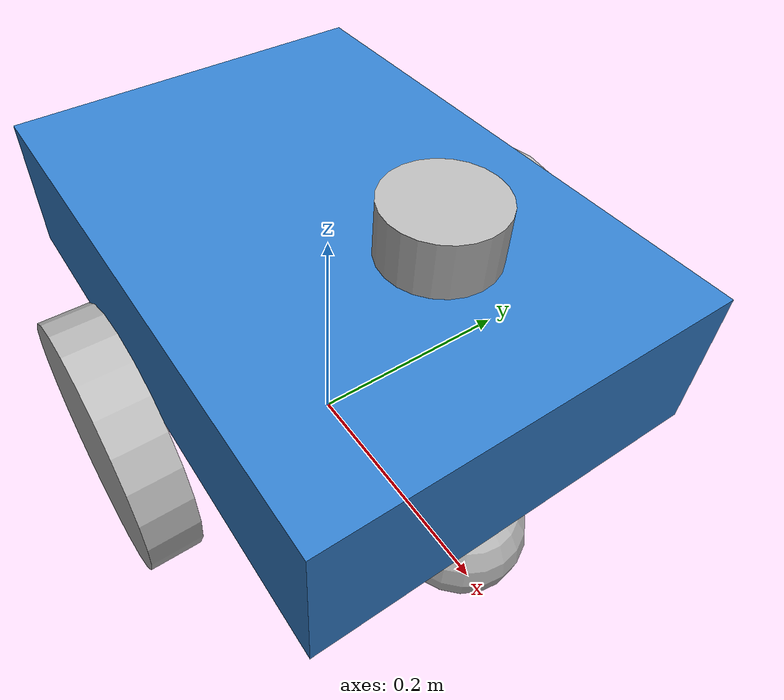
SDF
<?xml version="1.0" ?>
<sdf version="1.8">
  <model name="bomi_robot">

    <link name="base_link">
      <pose>0 0 0.18 0 0 0</pose>

      <!--
        관성은 0.45 x 0.32 x 0.12 m 직육면체(5.0 kg)의 이론값이다.
        배터리와 구동부가 차체 아래쪽에 실린다고 보고 무게중심을
        링크 원점보다 0.04 m 낮춰 주행 중 전복 여유를 확보한다.
      -->
      <inertial>
        <pose>0 0 -0.04 0 0 0</pose>
        <mass>5.0</mass>
        <inertia>
          <ixx>0.048667</ixx>
          <iyy>0.090375</iyy>
          <izz>0.127042</izz>
        </inertia>
      </inertial>

      <collision name="base_collision">
        <geometry>
          <box>
            <size>0.45 0.32 0.12</size>
          </box>
        </geometry>
      </collision>

      <visual name="base_visual">
        <geometry>
          <box>
            <size>0.45 0.32 0.12</size>
          </box>
        </geometry>

        <material>
          <ambient>0.2 0.5 0.8 1</ambient>
          <diffuse>0.2 0.5 0.8 1</diffuse>
        </material>
      </visual>
    </link>

    <link name="left_wheel">
      <pose>0 0.19 0.10 1.5708 0 0</pose>

      <!-- 반지름 0.10 m, 두께 0.04 m 원통(0.5 kg)의 이론 관성. 로컬 z가 회전축이다. -->
      <inertial>
        <mass>0.5</mass>
        <inertia>
          <ixx>0.001317</ixx>
          <iyy>0.001317</iyy>
          <izz>0.002500</izz>
        </inertia>
      </inertial>

      <collision name="collision">
        <geometry>
          <cylinder>
            <radius>0.10</radius>
            <length>0.04</length>
          </cylinder>
        </geometry>

        <!-- 구동륜은 미끄러지지 않도록 마찰을 명시한다. -->
        <surface>
          <friction>
            <ode>
              <mu>1.0</mu>
              <mu2>1.0</mu2>
            </ode>
          </friction>
        </surface>
      </collision>

      <visual name="visual">
        <geometry>
          <cylinder>
            <radius>0.10</radius>
            <length>0.04</length>
          </cylinder>
        </geometry>
      </visual>
    </link>

    <link name="right_wheel">
      <pose>0 -0.19 0.10 1.5708 0 0</pose>

      <!-- 반지름 0.10 m, 두께 0.04 m 원통(0.5 kg)의 이론 관성. 로컬 z가 회전축이다. -->
      <inertial>
        <mass>0.5</mass>
        <inertia>
          <ixx>0.001317</ixx>
          <iyy>0.001317</iyy>
          <izz>0.002500</izz>
        </inertia>
      </inertial>

      <collision name="collision">
        <geometry>
          <cylinder>
            <radius>0.10</radius>
            <length>0.04</length>
          </cylinder>
        </geometry>

        <!-- 구동륜은 미끄러지지 않도록 마찰을 명시한다. -->
        <surface>
          <friction>
            <ode>
              <mu>1.0</mu>
              <mu2>1.0</mu2>
            </ode>
          </friction>
        </surface>
      </collision>

      <visual name="visual">
        <geometry>
          <cylinder>
            <radius>0.10</radius>
            <length>0.04</length>
          </cylinder>
        </geometry>
      </visual>
    </link>

    <!--
      캐스터는 앞뒤 두 곳에 둔다. 뒤쪽에만 있으면 지지 다각형의 앞 경계가
      구동륜 축과 같아져 전진 가감속만으로도 로봇이 앞으로 넘어지고,
      기울어진 LiDAR가 바닥을 가짜 장애물로 인식한다.
      두 캐스터 모두 접지점이 z = 0으로 구동륜과 같은 높이다.
    -->
    <link name="rear_caster">
      <pose>-0.18 0 0.05 0 0 0</pose>

      <!-- 반지름 0.05 m 구(0.2 kg)의 이론 관성. -->
      <inertial>
        <mass>0.2</mass>
        <inertia>
          <ixx>0.0002</ixx>
          <iyy>0.0002</iyy>
          <izz>0.0002</izz>
        </inertia>
      </inertial>

      <collision name="collision">
        <geometry>
          <sphere>
            <radius>0.05</radius>
          </sphere>
        </geometry>

        <!-- 고정 캐스터가 바닥을 잡아 주행과 제자리 회전을 방해하지 않도록 마찰을 없앤다. -->
        <surface>
          <friction>
            <ode>
              <mu>0.0</mu>
              <mu2>0.0</mu2>
            </ode>
          </friction>
        </surface>
      </collision>

      <visual name="visual">
        <geometry>
          <sphere>
            <radius>0.05</radius>
          </sphere>
        </geometry>
      </visual>
    </link>

    <link name="front_caster">
      <pose>0.18 0 0.05 0 0 0</pose>

      <inertial>
        <mass>0.2</mass>
        <inertia>
          <ixx>0.0002</ixx>
          <iyy>0.0002</iyy>
          <izz>0.0002</izz>
        </inertia>
      </inertial>

      <collision name="collision">
        <geometry>
          <sphere>
            <radius>0.05</radius>
          </sphere>
        </geometry>

        <surface>
          <friction>
            <ode>
              <mu>0.0</mu>
              <mu2>0.0</mu2>
            </ode>
          </friction>
        </surface>
      </collision>

      <visual name="visual">
        <geometry>
          <sphere>
            <radius>0.05</radius>
          </sphere>
        </geometry>
      </visual>
    </link>

    <link name="lidar_link">
      <pose>0.12 0 0.30 0 0 0</pose>

      <inertial>
        <mass>0.1</mass>
        <inertia>
          <ixx>0.0001</ixx>
          <iyy>0.0001</iyy>
          <izz>0.0001</izz>
        </inertia>
      </inertial>

      <collision name="lidar_collision">
        <geometry>
          <cylinder>
            <radius>0.04</radius>
            <length>0.04</length>
          </cylinder>
        </geometry>
      </collision>

      <visual name="lidar_visual">
        <geometry>
          <cylinder>
            <radius>0.04</radius>
            <length>0.04</length>
          </cylinder>
        </geometry>
      </visual>

      <sensor name="lidar" type="gpu_lidar">
        <pose>0 0 0.03 0 0 0</pose>
        <topic>/scan</topic>
        <update_rate>10</update_rate>
        <always_on>true</always_on>
        <visualize>true</visualize>

        <lidar>
          <scan>
            <horizontal>
              <samples>720</samples>
              <resolution>1</resolution>
              <min_angle>-3.14159</min_angle>
              <max_angle>3.14159</max_angle>
            </horizontal>
          </scan>

          <range>
            <min>0.12</min>
            <max>10.0</max>
            <resolution>0.01</resolution>
          </range>

          <noise>
            <type>gaussian</type>
            <mean>0.0</mean>
            <stddev>0.01</stddev>
          </noise>
        </lidar>
      </sensor>
    </link>

    <joint name="left_wheel_joint" type="revolute">
      <parent>base_link</parent>
      <child>left_wheel</child>

      <axis>
        <xyz expressed_in="__model__">0 1 0</xyz>
      </axis>
    </joint>

    <joint name="right_wheel_joint" type="revolute">
      <parent>base_link</parent>
      <child>right_wheel</child>

      <axis>
        <xyz expressed_in="__model__">0 1 0</xyz>
      </axis>
    </joint>

    <joint name="rear_caster_joint" type="fixed">
      <parent>base_link</parent>
      <child>rear_caster</child>
    </joint>

    <joint name="front_caster_joint" type="fixed">
      <parent>base_link</parent>
      <child>front_caster</child>
    </joint>

    <joint name="lidar_joint" type="fixed">
      <parent>base_link</parent>
      <child>lidar_link</child>
    </joint>

    <plugin
      filename="ignition-gazebo-diff-drive-system"
      name="ignition::gazebo::systems::DiffDrive">

      <left_joint>left_wheel_joint</left_joint>
      <right_joint>right_wheel_joint</right_joint>

      <wheel_separation>0.38</wheel_separation>
      <wheel_radius>0.10</wheel_radius>

      <topic>/cmd_vel</topic>
      <odom_topic>/odom</odom_topic>

      <frame_id>odom</frame_id>
      <child_frame_id>base_link</child_frame_id>
    </plugin>

  </model>
</sdf>
